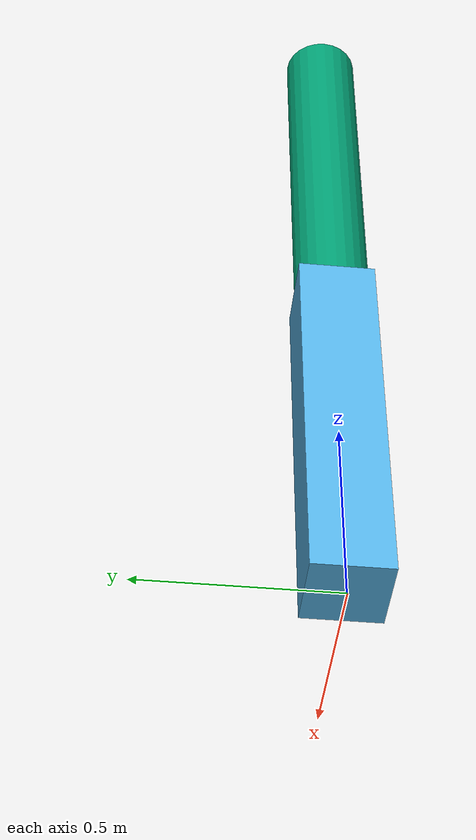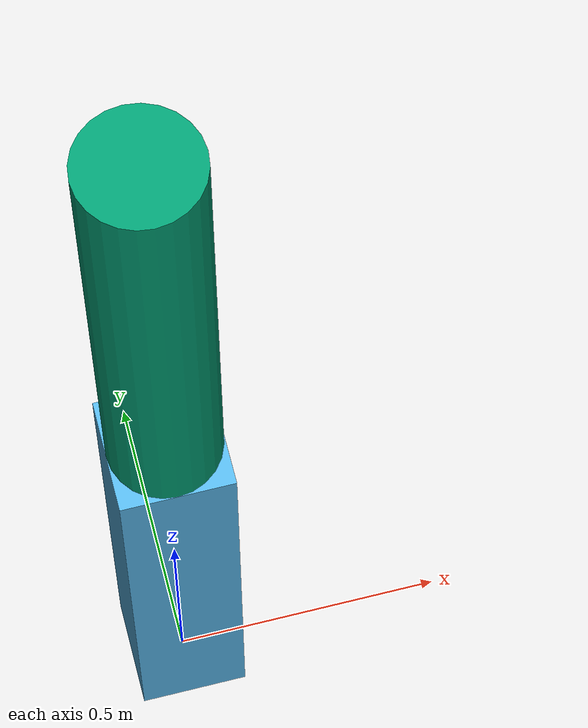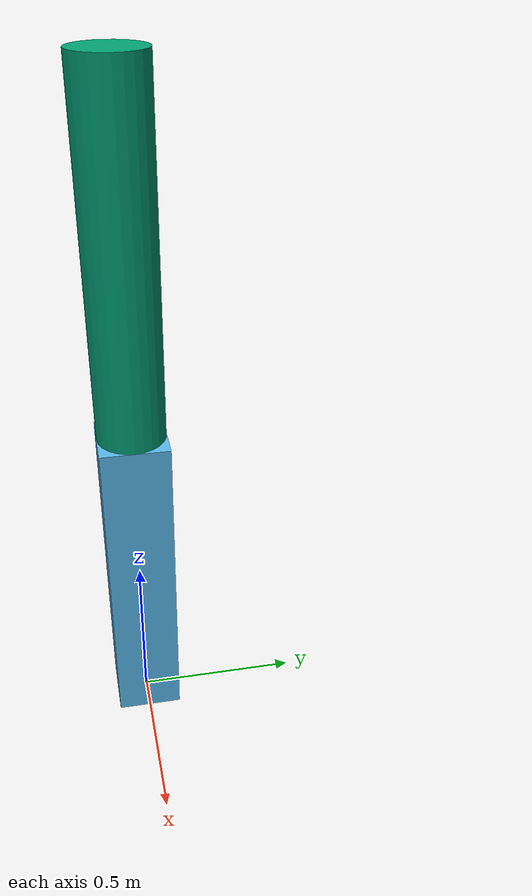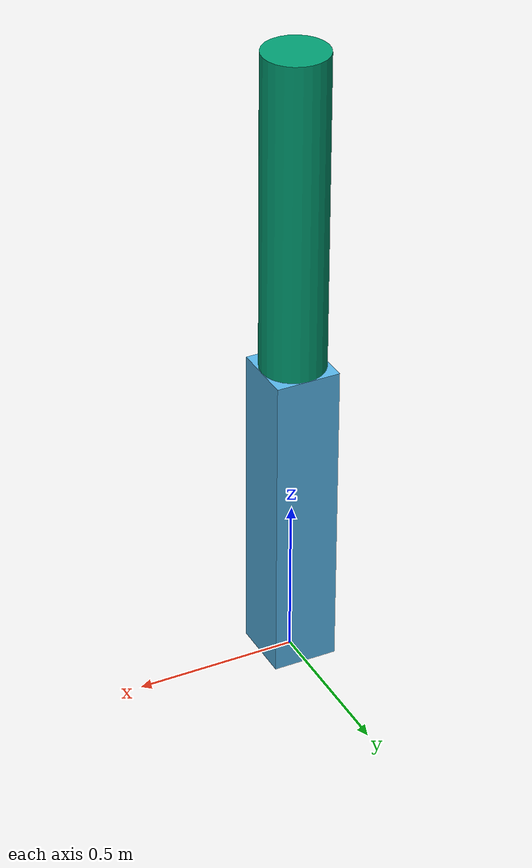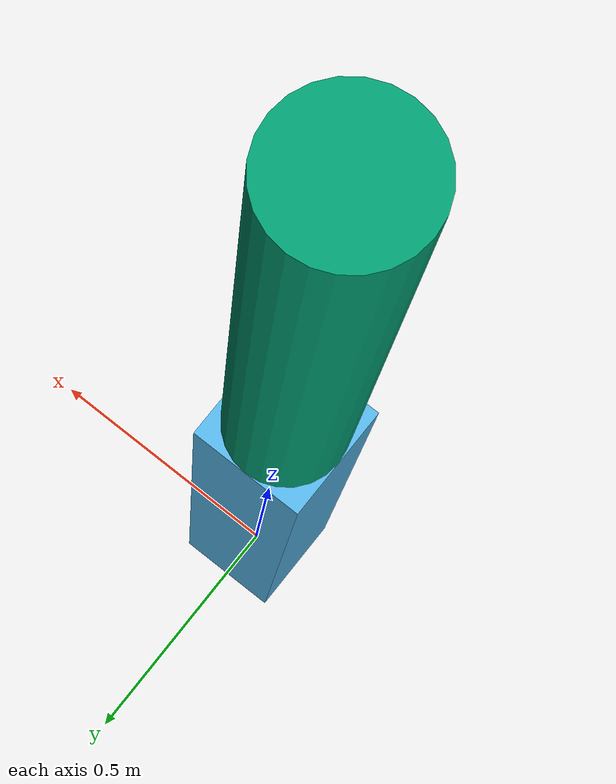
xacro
<?xml version="1.0"?>
<robot name="one_DOF_robot" xmlns:xacro="http://www.ros.org/wiki/xacro">
<!-- Used for fixing robot to Gazebo 'base_link' -->
  <link name="world"/>

  <joint name="glue_robot_to_world" type="fixed">
    <parent link="world"/>
    <child link="link1"/>
  </joint>

 <!-- Base Link -->
  <link name="link1">
    <collision>
      <origin xyz="0 0 0.5" rpy="0 0 0"/>
      <geometry>
       <box size="0.2 0.2 0.7"/>
      </geometry>
    </collision>

    <visual>
      <origin xyz="0 0 0.5" rpy="0 0 0"/>
      <geometry>
        <box size="0.2 0.2 1"/>
      </geometry>
    </visual>

    <inertial>
      <origin xyz="0 0 0.5" rpy="0 0 0"/>
      <mass value="1"/>
      <inertia
        ixx="1.0" ixy="0.0" ixz="0.0"
        iyy="1.0" iyz="0.0"
        izz="1.0"/>
    </inertial>
  </link>

<!-- Moveable Link -->
  <link name="link2">
    <collision>
      <origin xyz="0 0 0.5" rpy="0 0 0"/>
      <geometry>
        <cylinder length="1" radius="0.1"/>
        <!--box size="0.15 0.15 0.8"-->
      </geometry>
    </collision>

    <visual>
      <origin xyz="0 0 0.5" rpy="0 0 0"/>
      <geometry>
        <cylinder length="1" radius="0.1"/>
      </geometry>
    </visual>

    <inertial>
      <origin xyz="0 0 0.5" rpy="0 0 0"/>
      <mass value="1"/>
      <inertia
        ixx="0.1" ixy="0.0" ixz="0.0"
        iyy="0.1" iyz="0.0"
        izz="0.005"/>
    </inertial>
  </link>

  <joint name="joint_1" type="revolute">
    <parent link="link1"/>
    <child link="link2"/>
    <origin xyz="0 0 1" rpy="0 0 0"/>
    <axis xyz="0 1 0"/>
    <limit effort="10.0" lower="0.0" upper="2.0" velocity="0.5"/>
    <dynamics damping="1.0"/>
  </joint>

  <gazebo>
     <plugin name="joint_state_publisher" filename="libgazebo_ros_joint_state_publisher.so">
       <jointName>joint_1</jointName>
       <updateRate>100.0</updateRate>
     </plugin>
  </gazebo>
  <gazebo>
     <plugin name="gazebo_ros_control" filename="libgazebo_ros_control.so">
       <robotNamespace>/one_DOF_robot</robotNamespace>
       <robotSimType>gazebo_ros_control/DefaultRobotHWSim</robotSimType>
       <legacyModeNS>true</legacyModeNS>
     </plugin>
  </gazebo>

  <transmission name="tran_1">
    <type>transmission_interface/SimpleTransmission</type>
    <joint name="joint_1">
      <hardwareInterface>hardware_interface/PositionJointInterface</hardwareInterface>
    </joint>
    <actuator name="motor_1">
      <mechanicalReduction>1</mechanicalReduction>
      <hardwareInterface>PositionJointInterface</hardwareInterface>
    </actuator>
  </transmission>

</robot>
